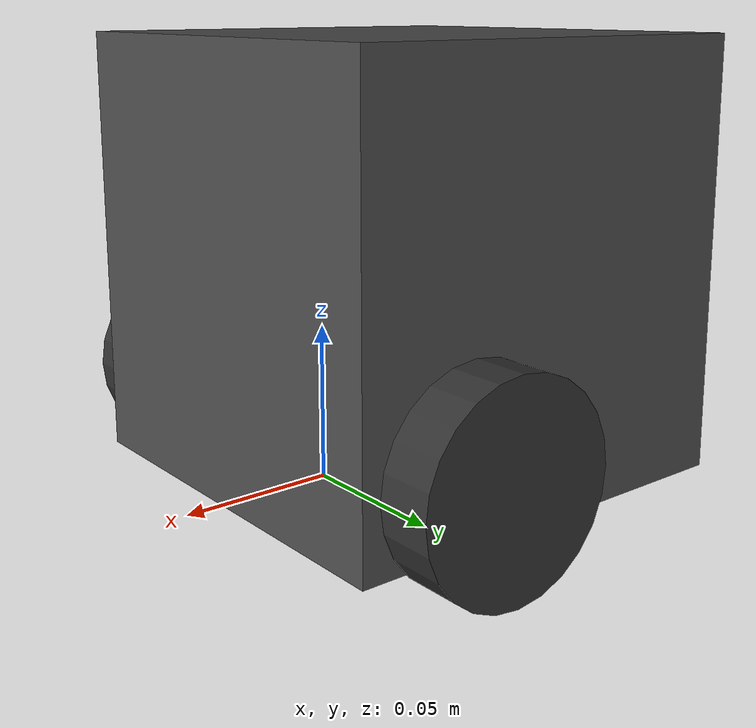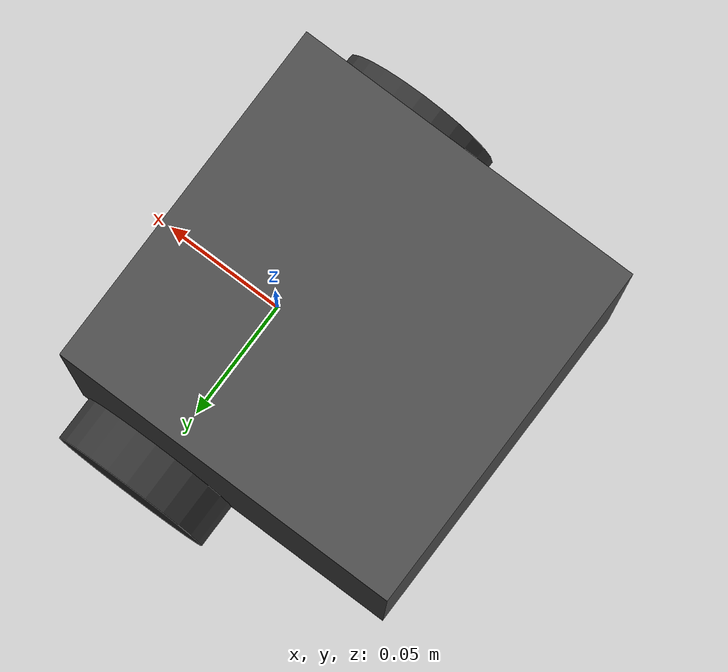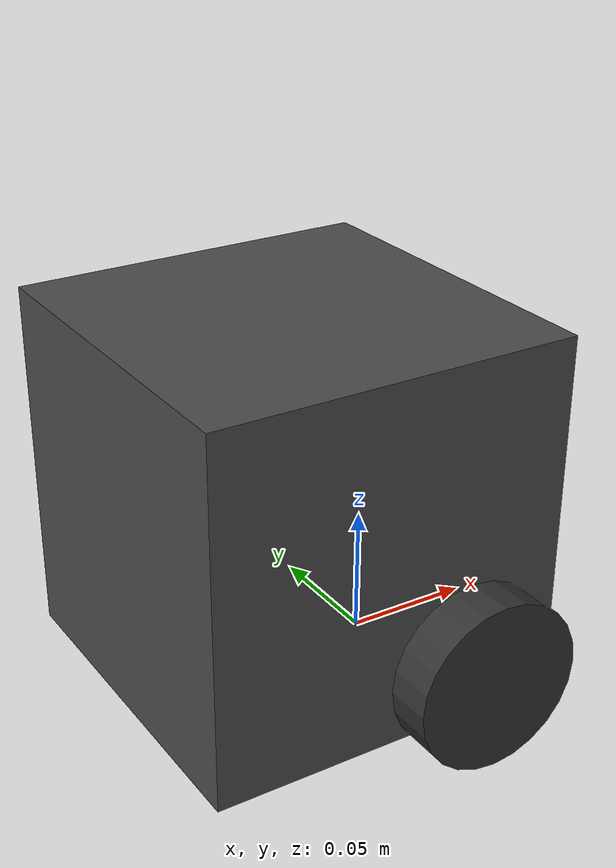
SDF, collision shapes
<?xml version="1.0" ?>
<sdf version="1.6">
  <model name="turtlebot3_burger_realsense">
    <pose>0.0 0.0 0.0 0.0 0.0 0.0</pose>

    <link name="base_footprint"/>

    <link name="base_link">

      <inertial>
        <pose>-0.032 0 0.070 0 0 0</pose>
        <inertia>
          <ixx>7.2397393e-01</ixx>
          <ixy>4.686399e-10</ixy>
          <ixz>-1.09525703e-08</ixz>
          <iyy>7.2397393e-01</iyy>
          <iyz>2.8582649e-09</iyz>
          <izz>6.53050163e-01</izz>
        </inertia>
        <mass>8.2573504e-01</mass>
      </inertial>

      <collision name="base_collision">
        <pose>-0.032 0 0.070 0 0 0</pose>
        <geometry>
          <box>
            <size>0.140 0.140 0.140</size>
          </box>
        </geometry>
      </collision>

      <visual name="base_visual">
        <pose>-0.032 0 0 0 0 0</pose>
        <geometry>
          <mesh>
            <uri>model://turtlebot3_common/meshes/bases/burger_base.stl</uri>
            <scale>0.001 0.001 0.001</scale>
          </mesh>
        </geometry>
        <material>
          <ambient>0.3 0.3 0.3 1.0</ambient>
          <diffuse>0.3 0.3 0.3 1.0</diffuse>
        </material>
      </visual>
    </link>

    <link name="imu_link">
      <sensor name="tb3_imu" type="imu">
        <always_on>true</always_on>
        <update_rate>200</update_rate>
        <imu>
          <angular_velocity>
            <x>
              <noise type="gaussian">
                <mean>0.0</mean>
                <stddev>2e-4</stddev>
              </noise>
            </x>
            <y>
              <noise type="gaussian">
                <mean>0.0</mean>
                <stddev>2e-4</stddev>
              </noise>
            </y>
            <z>
              <noise type="gaussian">
                <mean>0.0</mean>
                <stddev>2e-4</stddev>
              </noise>
            </z>
          </angular_velocity>
          <linear_acceleration>
            <x>
              <noise type="gaussian">
                <mean>0.0</mean>
                <stddev>1.7e-2</stddev>
              </noise>
            </x>
            <y>
              <noise type="gaussian">
                <mean>0.0</mean>
                <stddev>1.7e-2</stddev>
              </noise>
            </y>
            <z>
              <noise type="gaussian">
                <mean>0.0</mean>
                <stddev>1.7e-2</stddev>
              </noise>
            </z>
          </linear_acceleration>
        </imu>
        <plugin name="turtlebot3_imu" filename="libgazebo_ros_imu_sensor.so">
          <ros>
            <remapping>~/out:=imu</remapping>
          </ros>
        </plugin>
      </sensor>
    </link>

    <link name="wheel_left_link">

      <inertial>
        <pose>0 0.08 0.023 -1.57 0 0</pose>
        <inertia>
          <ixx>1.8158194e-03</ixx>
          <ixy>-9.3392e-12</ixy>
          <ixz>1.04909e-11</ixz>
          <iyy>3.2922126e-03</iyy>
          <iyz>5.75694e-11</iyz>
          <izz>1.8158194e-03</izz>
        </inertia>
        <mass>2.8498940e-02</mass>
      </inertial>

      <collision name="wheel_left_collision">
        <pose>0 0.08 0.023 -1.57 0 0</pose>
        <geometry>
          <cylinder>
            <radius>0.033</radius>
            <length>0.018</length>
          </cylinder>
        </geometry>
        <surface>
          <!-- This friction pamareter don't contain reliable data!! -->
          <friction>
            <ode>
              <mu>100000.0</mu>
              <mu2>100000.0</mu2>
              <fdir1>0 0 0</fdir1>
              <slip1>0.0</slip1>
              <slip2>0.0</slip2>
            </ode>
          </friction>
          <contact>
            <ode>
              <soft_cfm>0</soft_cfm>
              <soft_erp>0.2</soft_erp>
              <kp>1e+5</kp>
              <kd>1</kd>
              <max_vel>0.01</max_vel>
              <min_depth>0.001</min_depth>
            </ode>
          </contact>
        </surface>
      </collision>

      <visual name="wheel_left_visual">
        <pose>0 0.08 0.023 0 0 0</pose>
        <geometry>
          <mesh>
            <uri>model://turtlebot3_common/meshes/wheels/left_tire.stl</uri>
            <scale>0.001 0.001 0.001</scale>
          </mesh>
        </geometry>
        <material>
          <ambient>0.2 0.2 0.2 1.0</ambient>
          <diffuse>0.2 0.2 0.2 1.0</diffuse>
        </material>
      </visual>
    </link>

    <link name="wheel_right_link">

      <inertial>
        <pose>0.0 -0.08 0.023 -1.57 0 0</pose>
        <inertia>
          <ixx>1.8158194e-03</ixx>
          <ixy>-9.3392e-12</ixy>
          <ixz>1.04909e-11</ixz>
          <iyy>3.2922126e-03</iyy>
          <iyz>5.75694e-11</iyz>
          <izz>1.8158194e-03</izz>
        </inertia>
        <mass>2.8498940e-02</mass>
      </inertial>

      <collision name="wheel_right_collision">
        <pose>0.0 -0.08 0.023 -1.57 0 0</pose>
        <geometry>
          <cylinder>
            <radius>0.033</radius>
            <length>0.018</length>
          </cylinder>
        </geometry>
        <surface>
          <!-- This friction pamareter don't contain reliable data!! -->
          <friction>
            <ode>
              <mu>100000.0</mu>
              <mu2>100000.0</mu2>
              <fdir1>0 0 0</fdir1>
              <slip1>0.0</slip1>
              <slip2>0.0</slip2>
            </ode>
          </friction>
          <contact>
            <ode>
              <soft_cfm>0</soft_cfm>
              <soft_erp>0.2</soft_erp>
              <kp>1e+5</kp>
              <kd>1</kd>
              <max_vel>0.01</max_vel>
              <min_depth>0.001</min_depth>
            </ode>
          </contact>
        </surface>
      </collision>

      <visual name="wheel_right_visual">
        <pose>0.0 -0.08 0.023 0 0 0</pose>
        <geometry>
          <mesh>
            <uri>model://turtlebot3_common/meshes/wheels/right_tire.stl</uri>
            <scale>0.001 0.001 0.001</scale>
          </mesh>
        </geometry>
        <material>
          <ambient>0.2 0.2 0.2 1.0</ambient>
          <diffuse>0.2 0.2 0.2 1.0</diffuse>
        </material>
      </visual>
    </link>

    <link name='caster_back_link'>
      <pose>-0.081 0 -0.004 -1.57 0 0</pose>
      <inertial>
        <mass>0.005</mass>
        <inertia>
          <ixx>0.001</ixx>
          <ixy>0.000</ixy>
          <ixz>0.000</ixz>
          <iyy>0.001</iyy>
          <iyz>0.000</iyz>
          <izz>0.001</izz>
        </inertia>
      </inertial>
      <collision name='collision'>
        <geometry>
          <sphere>
            <radius>0.005000</radius>
          </sphere>
        </geometry>
        <surface>
          <contact>
            <ode>
              <soft_cfm>0</soft_cfm>
              <soft_erp>0.2</soft_erp>
              <kp>1e+5</kp>
              <kd>1</kd>
              <max_vel>0.01</max_vel>
              <min_depth>0.001</min_depth>
            </ode>
          </contact>
        </surface>
      </collision>
    </link>

    <link name="color_camera_link">
      <pose>0.076 0.0 0.093 0 0 0</pose>
      <inertial>
        <inertia>
          <ixx>0.001</ixx>
          <ixy>0.000</ixy>
          <ixz>0.000</ixz>
          <iyy>0.001</iyy>
          <iyz>0.000</iyz>
          <izz>0.001</izz>
        </inertia>
        <mass>0.035</mass>
      </inertial>

      <sensor name="color_camera" type="wideanglecamera">
        <always_on>true</always_on>
        <visualize>true</visualize>
        <update_rate>30</update_rate>
        <camera name="picam">
          <horizontal_fov>3.183</horizontal_fov>
          <image>
            <width>320</width>
            <height>240</height>
            <format>R8G8B8</format>
          </image>
          <clip>
            <near>0.03</near>
            <far>100</far>
          </clip>
          <lens>
            <type>custom</type>
            <custom_function>
              <c1>1.05</c1>
              <c2>4</c2>
              <f>1.0</f>
              <fun>tan</fun>
            </custom_function>
            <scale_to_hfov>true</scale_to_hfov>
            <cutoff_angle>3.1415</cutoff_angle>
            <env_texture_size>512</env_texture_size>
          </lens>
        </camera>
        <plugin name="color_plugin" filename="libgazebo_ros_camera.so">
          <ros>
            <namespace>/color_camera</namespace>
          </ros>
          <imageTopicName>image_raw</imageTopicName>
          <cameraInfoTopicName>camera_info</cameraInfoTopicName>
          <hackBaseline>0.07</hackBaseline>
          <distortionK1>0.0</distortionK1>
          <distortionK2>0.0</distortionK2>
          <distortionK3>0.0</distortionK3>
          <distortionT1>0.0</distortionT1>
          <distortionT2>0.0</distortionT2>
        </plugin>
      </sensor>
    </link>

    <link name="depth_camera_link">
      <inertial>
      <pose>0.076 0.0 0.093 0 0 0</pose>
        <inertia>
          <ixx>0.001</ixx>
          <ixy>0.000</ixy>
          <ixz>0.000</ixz>
          <iyy>0.001</iyy>
          <iyz>0.000</iyz>
          <izz>0.001</izz>
        </inertia>
        <mass>0.035</mass>
      </inertial>

      <sensor name="depth_camera" type="depth">
        <always_on>true</always_on>
        <update_rate>30.0</update_rate>
        <camera name="depth_camera">
          <horizontal_fov>1.5184</horizontal_fov>
          <image>
            <format>B8G8R8</format>
            <width>1280</width>
            <height>720</height>
          </image>
          <clip>
            <near>0.05</near>
            <far>3</far>
          </clip>
        </camera>

        <plugin name="depth_plugin" filename="libgazebo_ros_camera.so">
          <ros>
            <namespace>/depth_camera</namespace>
          </ros>
          <imageTopicName>image_raw</imageTopicName>
          <cameraInfoTopicName>camera_info</cameraInfoTopicName>
          <min_depth>0.028</min_depth>
          <max_depth>3.0</max_depth>
          <hackBaseline>0.07</hackBaseline>
        </plugin>
      </sensor>
    </link>

    <joint name="base_joint" type="fixed">
      <parent>base_footprint</parent>
      <child>base_link</child>
      <pose>0.0 0.0 0.010 0 0 0</pose>
    </joint>

    <joint name="wheel_left_joint" type="revolute">
      <parent>base_link</parent>
      <child>wheel_left_link</child>
      <pose>0.0 0.08 0.023 -1.57 0 0</pose>
      <axis>
        <xyz>0 0 1</xyz>
      </axis>
    </joint>

    <joint name="wheel_right_joint" type="revolute">
      <parent>base_link</parent>
      <child>wheel_right_link</child>
      <pose>0.0 -0.08 0.023 -1.57 0 0</pose>
      <axis>
        <xyz>0 0 1</xyz>
      </axis>
    </joint>

    <joint name='caster_back_joint' type='ball'>
      <parent>base_link</parent>
      <child>caster_back_link</child>
    </joint>

    <joint name="imu_joint" type="fixed">
      <parent>base_link</parent>
      <child>imu_link</child>
      <pose>-0.032 0 0.068 0 0 0</pose>
      <axis>
        <xyz>0 0 1</xyz>
      </axis>
    </joint>

    <joint name="depth_camera_joint" type="fixed">
      <parent>base_link</parent>
      <child>depth_camera_link</child>
      <pose>0.040 -0.000 0.110 0 0 0</pose>
      <axis>
        <xyz>0 0 1</xyz>
      </axis>
    </joint>

    <joint name="color_camera_joint" type="fixed">
      <parent>base_link</parent>
      <child>color_camera_link</child>
      <pose>0.040 -0.000 0.110 0 0 0</pose>
      <axis>
        <xyz>0 0 1</xyz>
      </axis>
    </joint>

    <plugin name="turtlebot3_diff_drive" filename="libgazebo_ros_diff_drive.so">

      <ros>
      </ros>

      <update_rate>30</update_rate>

      <!-- wheels -->
      <left_joint>wheel_left_joint</left_joint>
      <right_joint>wheel_right_joint</right_joint>

      <!-- kinematics -->
      <wheel_separation>0.160</wheel_separation>
      <wheel_diameter>0.066</wheel_diameter>

      <!-- limits -->
      <max_wheel_torque>20</max_wheel_torque>
      <max_wheel_acceleration>1.0</max_wheel_acceleration>

      <command_topic>cmd_vel</command_topic>

      <!-- output -->
      <publish_odom>true</publish_odom>
      <publish_odom_tf>true</publish_odom_tf>
      <publish_wheel_tf>false</publish_wheel_tf>

      <odometry_topic>odom</odometry_topic>
      <odometry_frame>odom</odometry_frame>
      <robot_base_frame>base_footprint</robot_base_frame>

    </plugin>

    <plugin name="turtlebot3_joint_state" filename="libgazebo_ros_joint_state_publisher.so">
      <ros>
        <remapping>~/out:=joint_states</remapping>
      </ros>
      <update_rate>30</update_rate>
      <joint_name>wheel_left_joint</joint_name>
      <joint_name>wheel_right_joint</joint_name>
    </plugin>
  </model>
</sdf>
